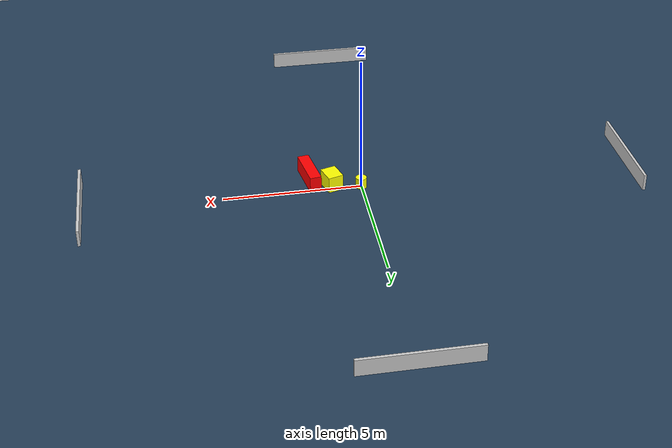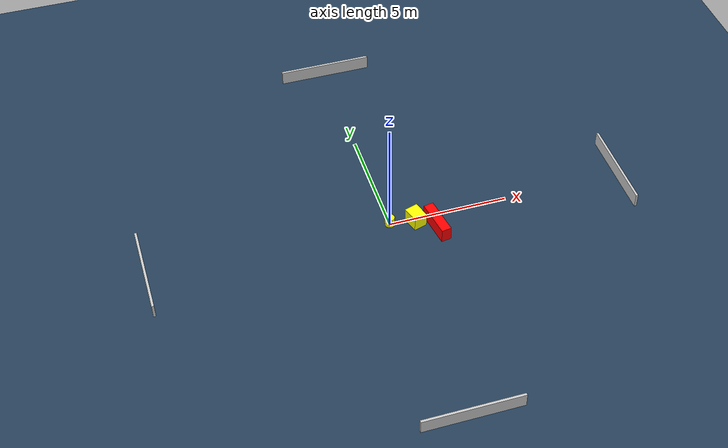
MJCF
<?xml version="1.0" ?>
<mujoco model="generated_environment">
  <option timestep="0.01" integrator="RK4" cone="elliptic"/>
  <default>
    <geom density="1"/>
  </default>
  <asset>
    <texture builtin="gradient" height="3072" name="skybox" rgb1="0.3 0.5 0.7" rgb2="0 0 0" type="skybox" width="512"/>
    <texture builtin="checker" height="300" name="groundplane" rgb1="0.2 0.3 0.4" rgb2="0.1 0.2 0.3" type="2d" width="300"/>
    <material name="groundplane" reflectance="0.2" texrepeat="5 5" texture="groundplane"/>
  </asset>
  <worldbody>
    <light dir="0 0 -1" directional="true" pos="0 0 1.5"/>
    <geom condim="3" friction="0.5 0.005 0.001" material="groundplane" name="floor" pos="0 0 0" size="0 0 0.05" type="plane"/>
    <body name="walls">
      <geom name="wall_1" condim="4" pos="-10.0 0.0 0.3" rgba="0.800000011920929 0.800000011920929 0.800000011920929 1.0" size="0.05 2.0 0.3" type="box"/>
      <geom name="wall_2" condim="4" pos="10.0 0.0 0.3" rgba="0.800000011920929 0.800000011920929 0.800000011920929 1.0" size="0.05 2.0 0.3" type="box"/>
      <geom name="wall_3" condim="4" pos="0.0 -10.0 0.3" rgba="0.800000011920929 0.800000011920929 0.800000011920929 1.0" size="2.0 0.05 0.3" type="box"/>
      <geom name="wall_4" condim="4" pos="0.0 10.0 0.3" rgba="0.800000011920929 0.800000011920929 0.800000011920929 1.0" size="2.0 0.05 0.3" type="box"/>
    </body>
    <body name="robot">
      <joint name="joint_x" type="slide" pos="0 0 0" axis="1 0 0"/>
      <joint name="joint_y" type="slide" pos="0 0 0" axis="0 1 0"/>
      <geom name="robot" type="cylinder" pos="0.0 0.0 0.2" size="0.2 0.2 0.0" mass="5.0" friction="1.0 0.005 0.0001" condim="4" rgba="1.0 1.0 0.0 1.0"/>
    </body>
    <body name="obstacle_1_movable">
      <geom name="obstacle_1_movable" condim="4" pos="1.0416788689518377 -0.20012706810114514 0.3" euler="0 0 286.7522458937117" friction="0.0 0.005 0.001" rgba="1.0 1.0 0.0 1.0" size="0.3542997400478205 0.28622147980685 0.3" type="box" mass="0.1"/>
      <joint type="free"/>
    </body>
    <body name="obstacle_2_static">
      <geom name="obstacle_2_static" condim="4" pos="1.7864912840405298 -0.7301634025667298 0.3" euler="0 0 98.99715568455295" friction="0.0 0.005 0.001" rgba="1.0 0.0 0.0 1.0" size="0.7969545071603976 0.20923666666316337 0.3" type="box"/>
    </body>
  </worldbody>
  <actuator>
    <motor name="actuator_x" joint="joint_x" gear="1" ctrlrange="-1 1"/>
    <motor name="actuator_y" joint="joint_y" gear="1" ctrlrange="-1 1"/>
  </actuator>
</mujoco>
